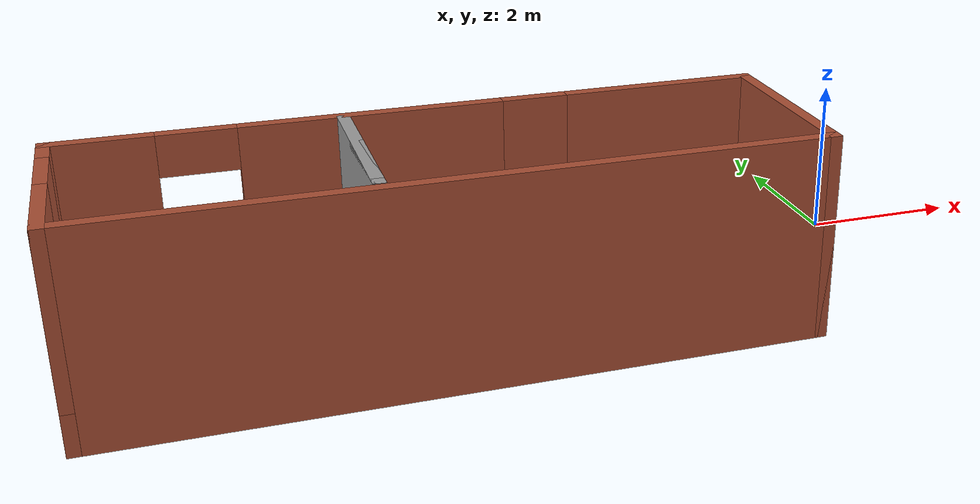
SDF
<?xml version='1.0'?>
<sdf version='1.6'>
  <model name='house'>
    <pose frame=''>-5.6875 -1.774 0 0 -0 0</pose>
    <link name='Wall_0'>
      <pose frame=''>-0 1.175 0 0 -0 3.14159</pose>
      <visual name='Wall_0_Visual_0'>
        <pose frame=''>-3.02349 0 1.25 0 -0 0</pose>
        <geometry>
          <box>
            <size>2.45302 0.15 2.5</size>
          </box>
        </geometry>
        <material>
          <script>
            <uri>file://media/materials/scripts/gazebo.material</uri>
            <name>Gazebo/Bricks</name>
          </script>
          <ambient>1 1 1 1</ambient>
        </material>
        <meta>
          <layer>0</layer>
        </meta>
      </visual>
      <collision name='Wall_0_Collision_0'>
        <geometry>
          <box>
            <size>2.45302 0.15 2.5</size>
          </box>
        </geometry>
        <pose frame=''>-3.02349 0 1.25 0 -0 0</pose>
      </collision>
      <visual name='Wall_0_Visual_1'>
        <pose frame=''>3.62865 0 1.25 0 -0 0</pose>
        <geometry>
          <box>
            <size>1.2427 0.15 2.5</size>
          </box>
        </geometry>
        <material>
          <script>
            <uri>file://media/materials/scripts/gazebo.material</uri>
            <name>Gazebo/Bricks</name>
          </script>
          <ambient>1 1 1 1</ambient>
        </material>
        <meta>
          <layer>0</layer>
        </meta>
      </visual>
      <collision name='Wall_0_Collision_1'>
        <geometry>
          <box>
            <size>1.2427 0.15 2.5</size>
          </box>
        </geometry>
        <pose frame=''>3.62865 0 1.25 0 -0 0</pose>
      </collision>
      <visual name='Wall_0_Visual_2'>
        <pose frame=''>0.155162 0 0.25 0 -0 0</pose>
        <geometry>
          <box>
            <size>3.90428 0.15 0.5</size>
          </box>
        </geometry>
        <material>
          <script>
            <uri>file://media/materials/scripts/gazebo.material</uri>
            <name>Gazebo/Bricks</name>
          </script>
          <ambient>1 1 1 1</ambient>
        </material>
        <meta>
          <layer>0</layer>
        </meta>
      </visual>
      <collision name='Wall_0_Collision_2'>
        <geometry>
          <box>
            <size>3.90428 0.15 0.5</size>
          </box>
        </geometry>
        <pose frame=''>0.155162 0 0.25 0 -0 0</pose>
      </collision>
      <visual name='Wall_0_Visual_3'>
        <pose frame=''>0.555162 0 1.5 0 -0 0</pose>
        <geometry>
          <box>
            <size>3.10427 0.15 2</size>
          </box>
        </geometry>
        <material>
          <script>
            <uri>file://media/materials/scripts/gazebo.material</uri>
            <name>Gazebo/Bricks</name>
          </script>
          <ambient>1 1 1 1</ambient>
        </material>
        <meta>
          <layer>0</layer>
        </meta>
      </visual>
      <collision name='Wall_0_Collision_3'>
        <geometry>
          <box>
            <size>3.10427 0.15 2</size>
          </box>
        </geometry>
        <pose frame=''>0.555162 0 1.5 0 -0 0</pose>
      </collision>
      <visual name='Wall_0_Visual_4'>
        <pose frame=''>-1.39698 0 1.9 0 -0 0</pose>
        <geometry>
          <box>
            <size>0.8 0.15 1.2</size>
          </box>
        </geometry>
        <material>
          <script>
            <uri>file://media/materials/scripts/gazebo.material</uri>
            <name>Gazebo/Bricks</name>
          </script>
          <ambient>1 1 1 1</ambient>
        </material>
        <meta>
          <layer>0</layer>
        </meta>
      </visual>
      <collision name='Wall_0_Collision_4'>
        <geometry>
          <box>
            <size>0.8 0.15 1.2</size>
          </box>
        </geometry>
        <pose frame=''>-1.39698 0 1.9 0 -0 0</pose>
      </collision>
      <visual name='Wall_0_Visual_5'>
        <pose frame=''>2.5573 0 2.25 0 -0 0</pose>
        <geometry>
          <box>
            <size>0.9 0.15 0.5</size>
          </box>
        </geometry>
        <material>
          <script>
            <uri>file://media/materials/scripts/gazebo.material</uri>
            <name>Gazebo/Bricks</name>
          </script>
          <ambient>1 1 1 1</ambient>
        </material>
        <meta>
          <layer>0</layer>
        </meta>
      </visual>
      <collision name='Wall_0_Collision_5'>
        <geometry>
          <box>
            <size>0.9 0.15 0.5</size>
          </box>
        </geometry>
        <pose frame=''>2.5573 0 2.25 0 -0 0</pose>
      </collision>
    </link>
    <link name='Wall_1'>
      <pose frame=''>-4.175 0 0 0 -0 -1.5708</pose>
      <visual name='Wall_1_Visual_0'>
        <pose frame=''>-1.0071 0 1.25 0 -0 0</pose>
        <geometry>
          <box>
            <size>0.4858 0.15 2.5</size>
          </box>
        </geometry>
        <material>
          <script>
            <uri>file://media/materials/scripts/gazebo.material</uri>
            <name>Gazebo/Bricks</name>
          </script>
          <ambient>1 1 1 1</ambient>
        </material>
        <meta>
          <layer>0</layer>
        </meta>
      </visual>
      <collision name='Wall_1_Collision_0'>
        <geometry>
          <box>
            <size>0.4858 0.15 2.5</size>
          </box>
        </geometry>
        <pose frame=''>-1.0071 0 1.25 0 -0 0</pose>
      </collision>
      <visual name='Wall_1_Visual_1'>
        <pose frame=''>0.2429 0 0.25 0 -0 0</pose>
        <geometry>
          <box>
            <size>2.0142 0.15 0.5</size>
          </box>
        </geometry>
        <material>
          <script>
            <uri>file://media/materials/scripts/gazebo.material</uri>
            <name>Gazebo/Bricks</name>
          </script>
          <ambient>1 1 1 1</ambient>
        </material>
        <meta>
          <layer>0</layer>
        </meta>
      </visual>
      <collision name='Wall_1_Collision_1'>
        <geometry>
          <box>
            <size>2.0142 0.15 0.5</size>
          </box>
        </geometry>
        <pose frame=''>0.2429 0 0.25 0 -0 0</pose>
      </collision>
      <visual name='Wall_1_Visual_2'>
        <pose frame=''>0.6429 0 1.5 0 -0 0</pose>
        <geometry>
          <box>
            <size>1.2142 0.15 2</size>
          </box>
        </geometry>
        <material>
          <script>
            <uri>file://media/materials/scripts/gazebo.material</uri>
            <name>Gazebo/Bricks</name>
          </script>
          <ambient>1 1 1 1</ambient>
        </material>
        <meta>
          <layer>0</layer>
        </meta>
      </visual>
      <collision name='Wall_1_Collision_2'>
        <geometry>
          <box>
            <size>1.2142 0.15 2</size>
          </box>
        </geometry>
        <pose frame=''>0.6429 0 1.5 0 -0 0</pose>
      </collision>
      <visual name='Wall_1_Visual_3'>
        <pose frame=''>-0.3642 0 1.9 0 -0 0</pose>
        <geometry>
          <box>
            <size>0.8 0.15 1.2</size>
          </box>
        </geometry>
        <material>
          <script>
            <uri>file://media/materials/scripts/gazebo.material</uri>
            <name>Gazebo/Bricks</name>
          </script>
          <ambient>1 1 1 1</ambient>
        </material>
        <meta>
          <layer>0</layer>
        </meta>
      </visual>
      <collision name='Wall_1_Collision_3'>
        <geometry>
          <box>
            <size>0.8 0.15 1.2</size>
          </box>
        </geometry>
        <pose frame=''>-0.3642 0 1.9 0 -0 0</pose>
      </collision>
    </link>
    <link name='Wall_2'>
      <collision name='Wall_2_Collision'>
        <geometry>
          <box>
            <size>8.5 0.15 2.5</size>
          </box>
        </geometry>
        <pose frame=''>0 0 1.25 0 -0 0</pose>
      </collision>
      <visual name='Wall_2_Visual'>
        <pose frame=''>0 0 1.25 0 -0 0</pose>
        <geometry>
          <box>
            <size>8.5 0.15 2.5</size>
          </box>
        </geometry>
        <material>
          <script>
            <uri>file://media/materials/scripts/gazebo.material</uri>
            <name>Gazebo/Bricks</name>
          </script>
          <ambient>1 1 1 1</ambient>
        </material>
        <meta>
          <layer>0</layer>
        </meta>
      </visual>
      <pose frame=''>-0 -1.175 0 0 -0 0</pose>
    </link>
    <link name='Wall_3'>
      <collision name='Wall_3_Collision'>
        <geometry>
          <box>
            <size>2.5 0.15 2.5</size>
          </box>
        </geometry>
        <pose frame=''>0 0 1.25 0 -0 0</pose>
      </collision>
      <visual name='Wall_3_Visual'>
        <pose frame=''>0 0 1.25 0 -0 0</pose>
        <geometry>
          <box>
            <size>2.5 0.15 2.5</size>
          </box>
        </geometry>
        <material>
          <script>
            <uri>file://media/materials/scripts/gazebo.material</uri>
            <name>Gazebo/Bricks</name>
          </script>
          <ambient>1 1 1 1</ambient>
        </material>
        <meta>
          <layer>0</layer>
        </meta>
      </visual>
      <pose frame=''>4.175 0 0 0 -0 1.5708</pose>
    </link>
    <link name='Wall_5'>
      <pose frame=''>-0.904175 0.041575 0 0 -0 -1.5708</pose>
      <visual name='Wall_5_Visual_0'>
        <pose frame=''>0 0 1.25 0 -0 0</pose>
        <geometry>
          <box>
            <size>2.25 0.15 2.5</size>
          </box>
        </geometry>
        <material>
          <script>
            <uri>file://media/materials/scripts/gazebo.material</uri>
            <name>Gazebo/Grey</name>
          </script>
          <ambient>1 1 1 1</ambient>
        </material>
        <meta>
          <layer>0</layer>
        </meta>
      </visual>
      <collision name='Wall_5_Collision_0'>
        <geometry>
          <box>
            <size>2.25 0.15 2.5</size>
          </box>
        </geometry>
        <pose frame=''>0 0 1.25 0 -0 0</pose>
      </collision>
      <visual name='Wall_5_Visual_1'>
        <pose frame=''>0.44765 0 1.25 0 -0 0</pose>
        <geometry>
          <box>
            <size>1.3547 0.15 2.5</size>
          </box>
        </geometry>
        <material>
          <script>
            <uri>file://media/materials/scripts/gazebo.material</uri>
            <name>Gazebo/Grey</name>
          </script>
          <ambient>1 1 1 1</ambient>
        </material>
        <meta>
          <layer>0</layer>
        </meta>
      </visual>
      <collision name='Wall_5_Collision_1'>
        <geometry>
          <box>
            <size>1.3547 0.15 2.5</size>
          </box>
        </geometry>
        <pose frame=''>0.44765 0 1.25 0 -0 0</pose>
      </collision>
    </link>
    <link name='Wall_6'>
      <collision name='Wall_6_Collision'>
        <geometry>
          <box>
            <size>0.15 0.15 2.5</size>
          </box>
        </geometry>
        <pose frame=''>0 0 1.25 0 -0 0</pose>
      </collision>
      <visual name='Wall_6_Visual'>
        <pose frame=''>0 0 1.25 0 -0 0</pose>
        <geometry>
          <box>
            <size>0.15 0.15 2.5</size>
          </box>
        </geometry>
        <material>
          <script>
            <uri>file://media/materials/scripts/gazebo.material</uri>
            <name>Gazebo/Grey</name>
          </script>
          <ambient>1 1 1 1</ambient>
        </material>
        <meta>
          <layer>0</layer>
        </meta>
      </visual>
      <pose frame=''>-0.904175 -1.00842 0 0 -0 0</pose>
    </link>
    <static>1</static>
  </model>
</sdf>
